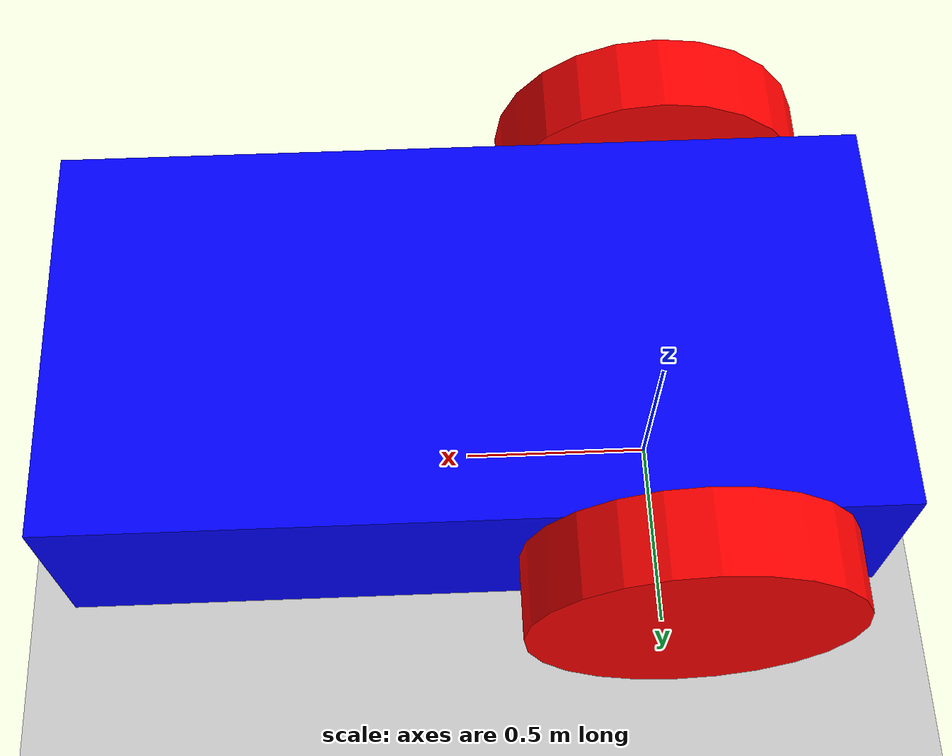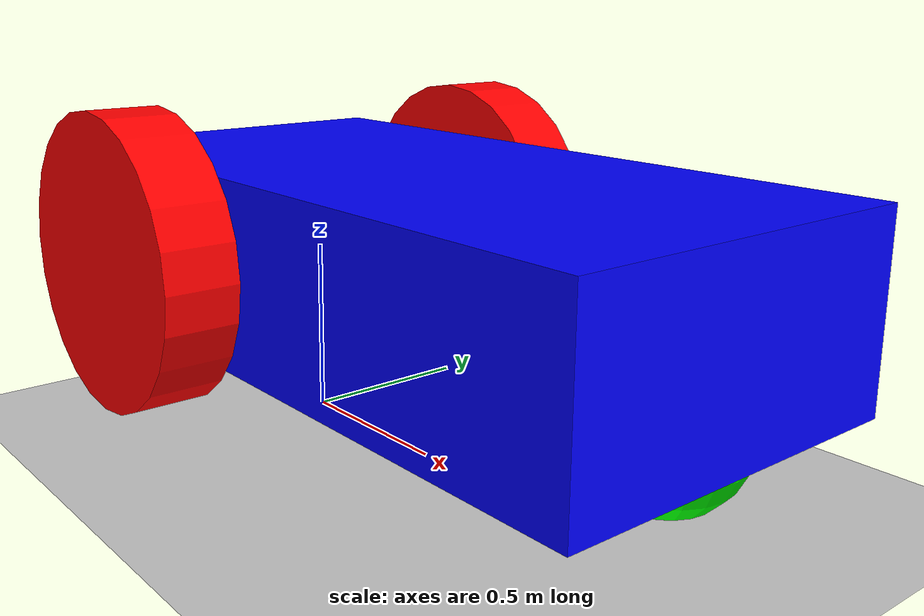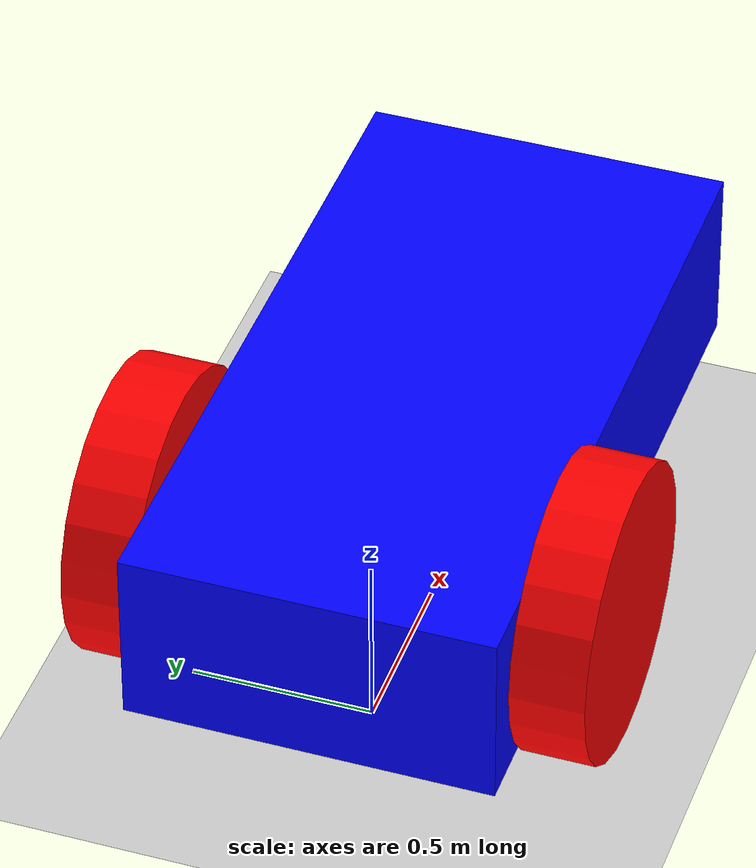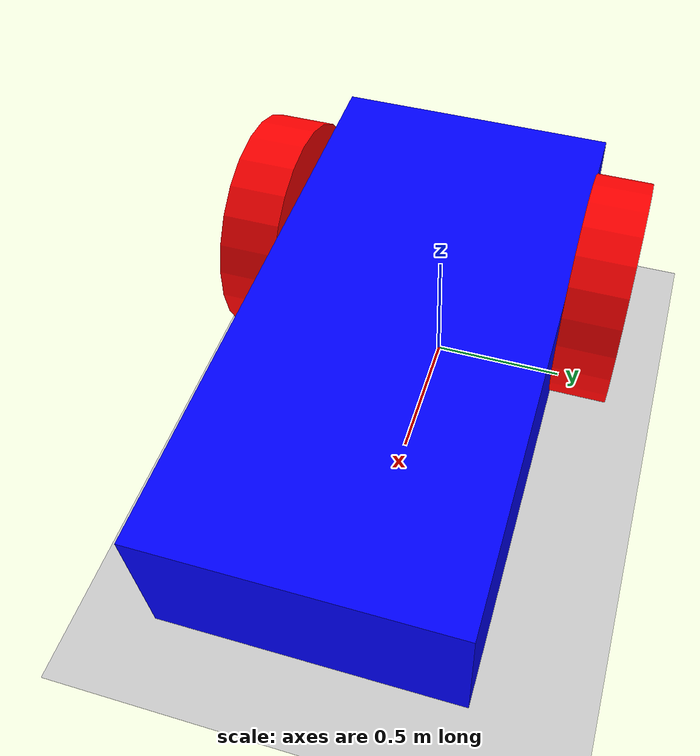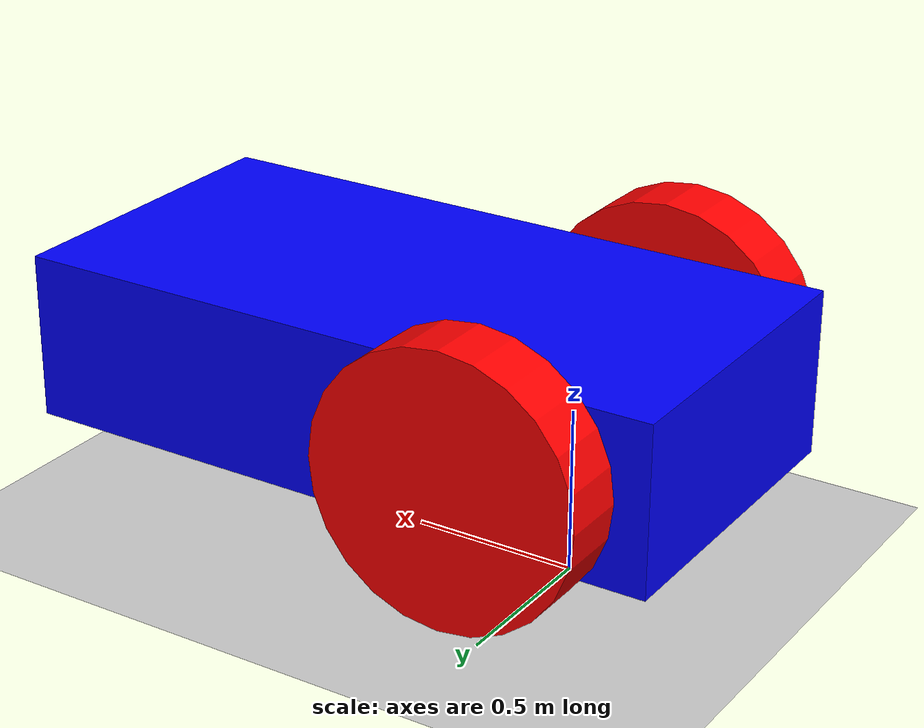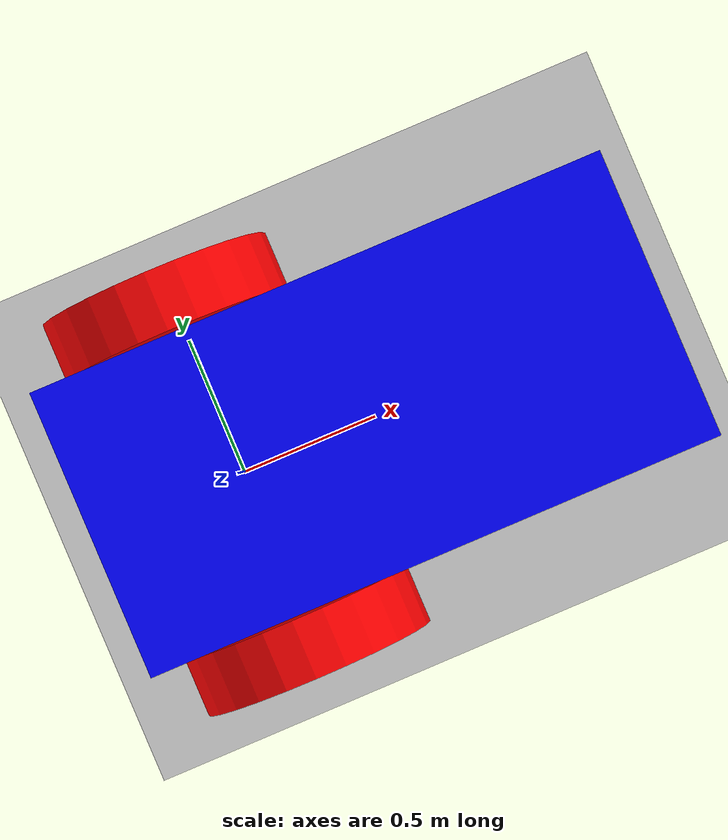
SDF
<?xml version="1.0"?>
<sdf version="1.9">

  <world name="ground_robot_world">

    <!-- Physics -->
    <physics name="default_physics" type="ode">
      <max_step_size>0.01</max_step_size>
      <real_time_factor>1</real_time_factor>
      <real_time_update_rate>100</real_time_update_rate>
    </physics>

    <!-- Gravity -->
    <gravity>0 0 -9.81</gravity>

    <!-- Ground -->
    <model name="ground">

      <static>true</static>

      <link name="link">

        <collision name="collision">
          <geometry>
            <plane>
              <normal>0 0 1</normal>
              <size>20 20</size>
            </plane>
          </geometry>
        </collision>

        <visual name="visual">
          <geometry>
            <plane>
              <normal>0 0 1</normal>
              <size>20 20</size>
            </plane>
          </geometry>
        </visual>

      </link>

    </model>

    <!-- Light -->
    <light
      name="sun"
      type="directional">

      <cast_shadows>false</cast_shadows>
      <pose>0 0 10 0 0 0</pose>

      <diffuse>0.8 0.8 0.8 1</diffuse>
      <specular>0.2 0.2 0.2 1</specular>

      <direction>-0.5 0.5 -1</direction>

    </light>

    <!-- LLM-controlled ground robot -->
    <include>
      <uri>model://vehicle_blue</uri>
      <name>vehicle_blue</name>
      <pose>0 0 0.15 0 0 0</pose>
    </include>

  </world>

</sdf>

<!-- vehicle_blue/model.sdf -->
<sdf version="1.8">
  <model name='vehicle_blue' canonical_link='chassis'>
    <pose>0 0 0 0 0 0</pose>

    <link name='chassis'>
      <pose relative_to='__model__'>0.5 0 0.4 0 0 0</pose>
      <inertial> <mass>1.14395</mass> <inertia> <ixx>0.095329</ixx> <ixy>0</ixy> <ixz>0</ixz> <iyy>0.381317</iyy> <iyz>0</iyz> <izz>0.476646</izz> </inertia> </inertial>
      <visual name='visual'> <geometry> <box> <size>2.0 1.0 0.5</size> </box> </geometry> <material> <ambient>0.0 0.0 1.0 1</ambient> <diffuse>0.0 0.0 1.0 1</diffuse> <specular>0.0 0.0 1.0 1</specular> </material> </visual>
      <collision name='collision'> <geometry> <box> <size>2.0 1.0 0.5</size> </box> </geometry> </collision>

      <sensor name='camera_sensor' type='camera'>
        <pose>1.0 0 0.25 0 0 0</pose>
        <camera>
          <horizontal_fov>1.047</horizontal_fov>
          <image>
            <width>640</width>
            <height>480</height>
            <format>R8G8B8</format>
          </image>
          <clip>
            <near>0.1</near>
            <far>100</far>
          </clip>
        </camera>
        <update_rate>30</update_rate>
        <topic>/model/vehicle_blue/camera</topic>
      </sensor>
    </link>

    <link name='left_wheel'>
      <pose relative_to="chassis">-0.5 0.6 0 -1.5707 0 0</pose>
      <inertial> <mass>1</mass> <inertia> <ixx>0.043333</ixx> <ixy>0</ixy> <ixz>0</ixz> <iyy>0.043333</iyy> <iyz>0</iyz> <izz>0.08</izz> </inertia> </inertial>
      <visual name='visual'> <geometry> <cylinder> <radius>0.4</radius> <length>0.2</length> </cylinder> </geometry> <material> <ambient>1.0 0.0 0.0 1</ambient> <diffuse>1.0 0.0 0.0 1</diffuse> <specular>1.0 0.0 0.0 1</specular> </material> </visual>
      <collision name='collision'> <geometry> <cylinder> <radius>0.4</radius> <length>0.2</length> </cylinder> </geometry> </collision>
    </link>

    <link name='right_wheel'>
      <pose relative_to="chassis">-0.5 -0.6 0 -1.5707 0 0</pose>
      <inertial> <mass>1</mass> <inertia> <ixx>0.043333</ixx> <ixy>0</ixy> <ixz>0</ixz> <iyy>0.043333</iyy> <iyz>0</iyz> <izz>0.08</izz> </inertia> </inertial>
      <visual name='visual'> <geometry> <cylinder> <radius>0.4</radius> <length>0.2</length> </cylinder> </geometry> <material> <ambient>1.0 0.0 0.0 1</ambient> <diffuse>1.0 0.0 0.0 1</diffuse> <specular>1.0 0.0 0.0 1</specular> </material> </visual>
      <collision name='collision'> <geometry> <cylinder> <radius>0.4</radius> <length>0.2</length> </cylinder> </geometry> </collision>
    </link>

    <frame name="caster_frame" attached_to='chassis'> <pose>0.8 0 -0.2 0 0 0</pose> </frame>
    <link name='caster'>
      <pose relative_to='caster_frame'/>
      <inertial> <mass>1</mass> <inertia> <ixx>0.016</ixx> <ixy>0</ixy> <ixz>0</ixz> <iyy>0.016</iyy> <iyz>0</iyz> <izz>0.016</izz> </inertia> </inertial>
      <visual name='visual'> <geometry> <sphere> <radius>0.2</radius> </sphere> </geometry> <material> <ambient>0.0 1 0.0 1</ambient> <diffuse>0.0 1 0.0 1</diffuse> <specular>0.0 1 0.0 1</specular> </material> </visual>
      <collision name='collision'> <geometry> <sphere> <radius>0.2</radius> </sphere> </geometry> </collision>
    </link>

    <joint name='left_wheel_joint' type='revolute'>
      <pose relative_to='left_wheel'/>
      <parent>chassis</parent>
      <child>left_wheel</child>
      <axis> <xyz expressed_in='__model__'>0 1 0</xyz> <limit> <lower>-1.79769e+308</lower> <upper>1.79769e+308</upper> </limit> </axis>
    </joint>
    <joint name='right_wheel_joint' type='revolute'>
      <pose relative_to='right_wheel'/>
      <parent>chassis</parent>
      <child>right_wheel</child>
      <axis> <xyz expressed_in='__model__'>0 1 0</xyz> <limit> <lower>-1.79769e+308</lower> <upper>1.79769e+308</upper> </limit> </axis>
    </joint>
    <joint name='caster_wheel' type='ball'>
      <parent>chassis</parent>
      <child>caster</child>
    </joint>

    <plugin
      filename="gz-sim-diff-drive-system"
      name="gz::sim::systems::DiffDrive">
      <left_joint>left_wheel_joint</left_joint>
      <right_joint>right_wheel_joint</right_joint>
      <wheel_separation>1.2</wheel_separation> <wheel_radius>0.4</wheel_radius>
    </plugin>

    <plugin
      filename="gz-sim-joint-state-publisher-system"
      name="gz::sim::systems::JointStatePublisher">
    </plugin>

    <plugin
      filename="gz-sim-pose-publisher-system"
      name="gz::sim::systems::PosePublisher">
      <publish_link_pose>true</publish_link_pose>
      <publish_sensor_pose>true</publish_sensor_pose>
      <publish_collision_pose>false</publish_collision_pose>
      <publish_visual_pose>false</publish_visual_pose>
      <publish_model_pose>true</publish_model_pose>
      <use_static_publisher>false</use_static_publisher>
    </plugin>

    <plugin
       filename="gz-sim-sensors-system"
       name="gz::sim::systems::Sensors">
    </plugin>

  </model>
</sdf>
